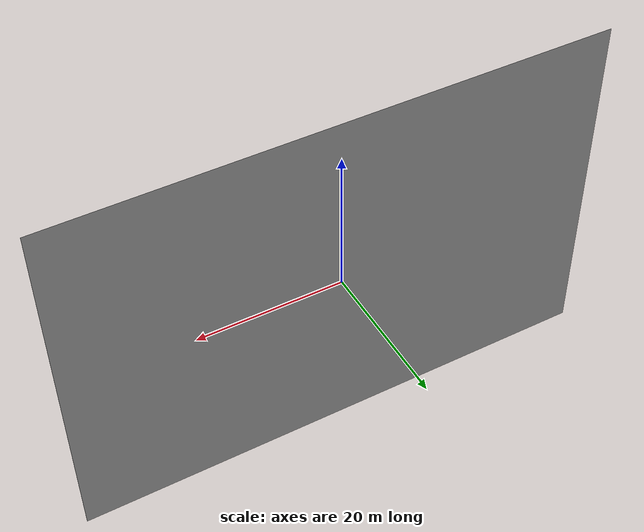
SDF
<?xml version="1.0"?>
<sdf version="1.9">
  <model name="concrete_ground">
    <static>true</static>
    <link name="link">
      <collision name="collision">
        <geometry>
          <plane>
            <normal>0 0 1</normal>
            <size>1 1</size>
          </plane>
        </geometry>
        <surface>
          <friction><ode/></friction>
          <bounce/>
          <contact/>
        </surface>
      </collision>
      <visual name="visual">
        <cast_shadows>false</cast_shadows>
        <geometry>
          <mesh>
            <uri>model://concrete_ground/meshes/concrete_ground.obj</uri>
          </mesh>
        </geometry>
      </visual>
    </link>
  </model>
</sdf>
